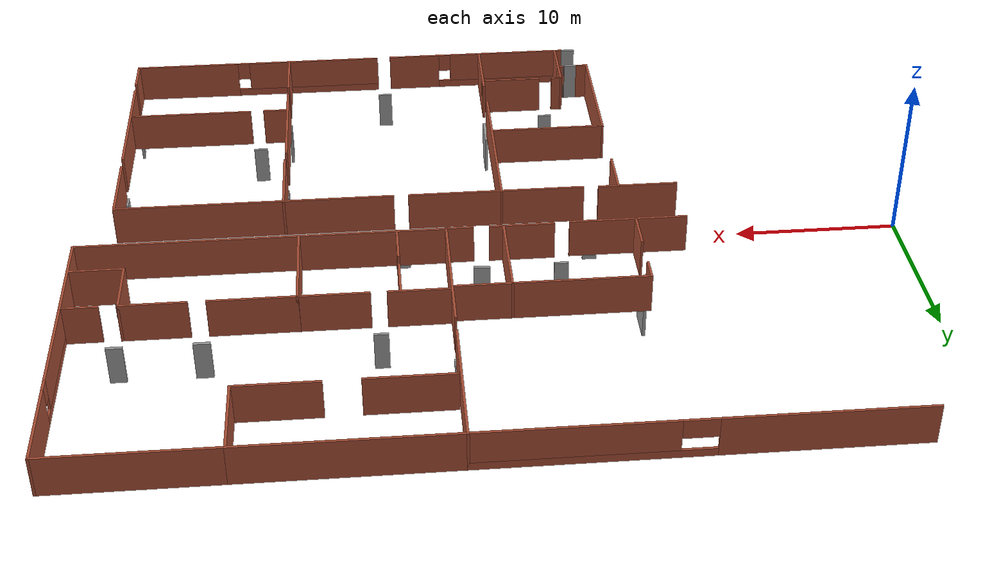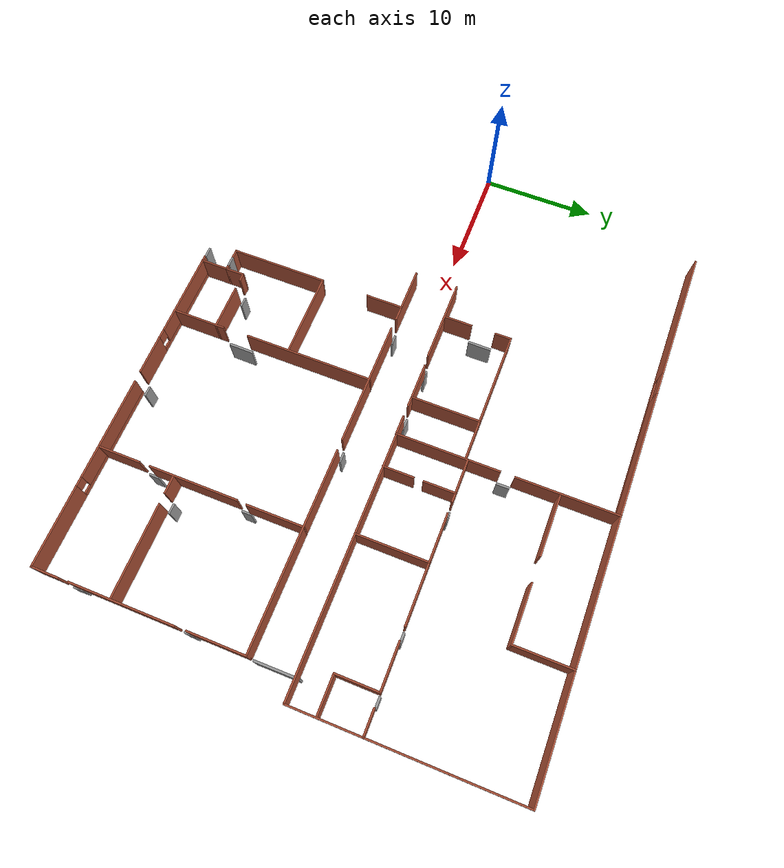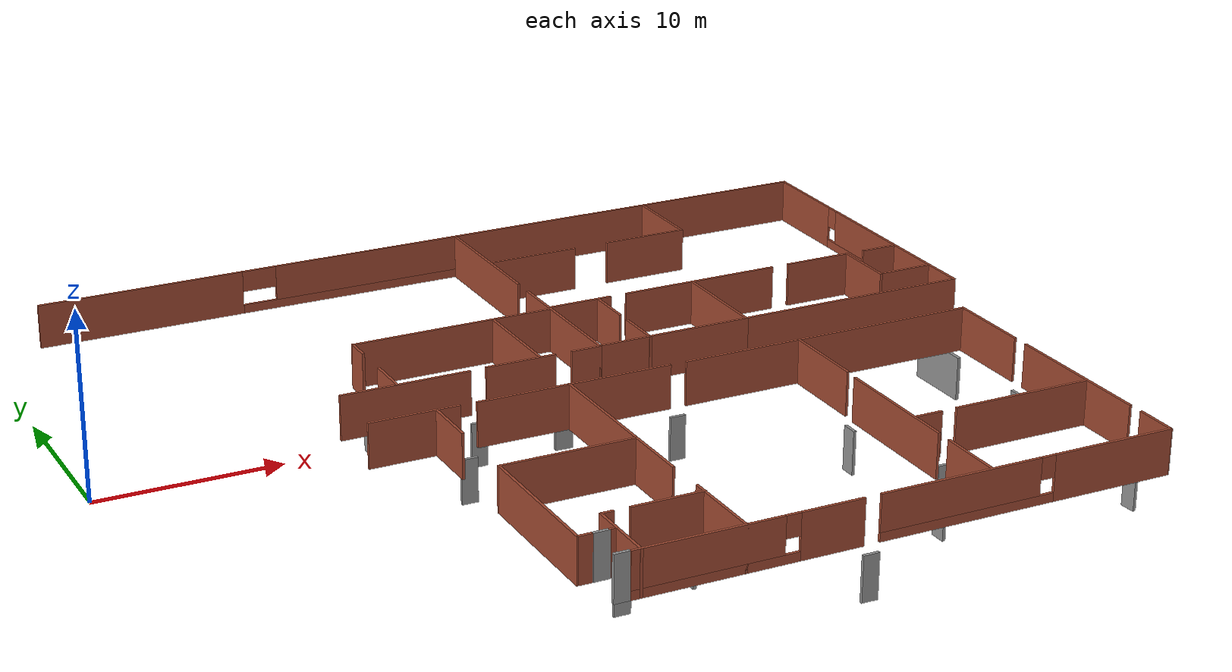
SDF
<sdf version="1.6">
 <model name="Bainer_Hall_FP">
  <pose>1.25513 -0.156837 0 0 -0 0</pose>
  <link name="Door_22">
   <collision name="Door_22_Collision">
    <geometry><box><size>1.17263 0.2 2.5</size></box></geometry>
    <pose>0 0 1.25 0 -0 0</pose>
   </collision>
   <visual name="Door_22_Visual">
    <pose>0 0 1.25 0 -0 0</pose>
    <geometry><box><size>1.17263 0.2 2.5</size></box></geometry>
    <material>
     <script><uri>file://media/materials/scripts/gazebo.material</uri><name>Gazebo/Grey</name></script>
    </material>
   </visual>
   <pose>26.9821 11.0502 -3 0 0 -1.55803</pose>
  </link>
  <link name="Door_23">
   <collision name="Door_23_Collision">
    <geometry><box><size>1.01 0.2 2.5</size></box></geometry>
    <pose>0 0 1.25 0 -0 0</pose>
   </collision>
   <visual name="Door_23_Visual">
    <pose>0 0 1.25 0 -0 0</pose>
    <geometry><box><size>1.01 0.2 2.5</size></box></geometry>
    <material>
     <script><uri>file://media/materials/scripts/gazebo.material</uri><name>Gazebo/Grey</name></script>
    </material>
   </visual>
   <pose>24.8391 1.55098 -3 0 -0 3.10452</pose>
  </link>
  <link name="Door_24">
   <collision name="Door_24_Collision">
    <geometry><box><size>0.9 0.17 2.5</size></box></geometry>
    <pose>0 0 1.25 0 -0 0</pose>
   </collision>
   <visual name="Door_24_Visual">
    <pose>0 0 1.25 0 -0 0</pose>
    <geometry><box><size>0.9 0.17 2.5</size></box></geometry>
    <material>
     <script><uri>file://media/materials/scripts/gazebo.material</uri><name>Gazebo/Grey</name></script>
    </material>
   </visual>
   <pose>19.9109 1.51909 -3 0 -0 0</pose>
  </link>
  <link name="Door_25">
   <collision name="Door_25_Collision">
    <geometry><box><size>2.087 0.2 2.5</size></box></geometry>
    <pose>0 0 1.25 0 -0 0</pose>
   </collision>
   <visual name="Door_25_Visual">
    <pose>0 0 1.25 0 -0 0</pose>
    <geometry><box><size>2.087 0.2 2.5</size></box></geometry>
    <material>
     <script><uri>file://media/materials/scripts/gazebo.material</uri><name>Gazebo/Grey</name></script>
    </material>
   </visual>
   <pose>15.4161 5.0222 -3 0 0 -1.5708</pose>
  </link>
  <link name="Door_26">
   <collision name="Door_26_Collision">
    <geometry><box><size>1.035 0.2 2.5</size></box></geometry>
    <pose>0 0 1.25 0 -0 0</pose>
   </collision>
   <visual name="Door_26_Visual">
    <pose>0 0 1.25 0 -0 0</pose>
    <geometry><box><size>1.035 0.2 2.5</size></box></geometry>
    <material>
     <script><uri>file://media/materials/scripts/gazebo.material</uri><name>Gazebo/Grey</name></script>
    </material>
   </visual>
   <pose>41.537 7.70908 -3 0 -0 0</pose>
  </link>
  <link name="Door_27">
   <collision name="Door_27_Collision">
    <geometry><box><size>0.989792 0.2 2.5</size></box></geometry>
    <pose>0 0 1.25 0 -0 0</pose>
   </collision>
   <visual name="Door_27_Visual">
    <pose>0 0 1.25 0 -0 0</pose>
    <geometry><box><size>0.989792 0.2 2.5</size></box></geometry>
    <material>
     <script><uri>file://media/materials/scripts/gazebo.material</uri><name>Gazebo/Grey</name></script>
    </material>
   </visual>
   <pose>46.5429 7.70908 -3 0 -0 0</pose>
  </link>
  <link name="Door_28">
   <collision name="Door_28_Collision">
    <geometry><box><size>0.9 0.17 2.5</size></box></geometry>
    <pose>0 0 1.25 0 -0 0</pose>
   </collision>
   <visual name="Door_28_Visual">
    <pose>0 0 1.25 0 -0 0</pose>
    <geometry><box><size>0.9 0.17 2.5</size></box></geometry>
    <material>
     <script><uri>file://media/materials/scripts/gazebo.material</uri><name>Gazebo/Grey</name></script>
    </material>
   </visual>
   <pose>31.1816 7.72893 -3 0 -0 0</pose>
  </link>
  <link name="Door_37">
   <collision name="Door_37_Collision">
    <geometry><box><size>0.9 0.17 2.5</size></box></geometry>
    <pose>0 0 1.25 0 -0 0</pose>
   </collision>
   <visual name="Door_37_Visual">
    <pose>0 0 1.25 0 -0 0</pose>
    <geometry><box><size>0.9 0.17 2.5</size></box></geometry>
    <material>
     <script><uri>file://media/materials/scripts/gazebo.material</uri><name>Gazebo/Grey</name></script>
    </material>
   </visual>
   <pose>17.6392 -2.30496 -3 0 -0 0</pose>
  </link>
  <link name="Door_38">
   <collision name="Door_38_Collision">
    <geometry><box><size>0.9 0.17 2.5</size></box></geometry>
    <pose>0 0 1.25 0 -0 0</pose>
   </collision>
   <visual name="Door_38_Visual">
    <pose>0 0 1.25 0 -0 0</pose>
    <geometry><box><size>0.9 0.17 2.5</size></box></geometry>
    <material>
     <script><uri>file://media/materials/scripts/gazebo.material</uri><name>Gazebo/Grey</name></script>
    </material>
   </visual>
   <pose>29.5592 -2.30521 -3 0 0 -3.13072</pose>
  </link>
  <link name="Door_39">
   <collision name="Door_39_Collision">
    <geometry><box><size>0.9 0.17 2.5</size></box></geometry>
    <pose>0 0 1.25 0 -0 0</pose>
   </collision>
   <visual name="Door_39_Visual">
    <pose>0 0 1.25 0 -0 0</pose>
    <geometry><box><size>0.9 0.17 2.5</size></box></geometry>
    <material>
     <script><uri>file://media/materials/scripts/gazebo.material</uri><name>Gazebo/Grey</name></script>
    </material>
   </visual>
   <pose>47.1899 -7.6622 -3 0 -0 1.55378</pose>
  </link>
  <link name="Door_40">
   <collision name="Door_40_Collision">
    <geometry><box><size>0.9 0.17 2</size></box></geometry>
    <pose>0 0 1 0 -0 0</pose>
   </collision>
   <visual name="Door_40_Visual">
    <pose>0 0 1 0 -0 0</pose>
    <geometry><box><size>0.9 0.17 2</size></box></geometry>
    <material>
     <script><uri>file://media/materials/scripts/gazebo.material</uri><name>Gazebo/Grey</name></script>
    </material>
   </visual>
   <pose>47.2284 -17.5715 -3 0 -0 1.63085</pose>
  </link>
  <link name="Door_42">
   <collision name="Door_42_Collision">
    <geometry><box><size>0.9 0.17 2.5</size></box></geometry>
    <pose>0 0 1.25 0 -0 0</pose>
   </collision>
   <visual name="Door_42_Visual">
    <pose>0 0 1.25 0 -0 0</pose>
    <geometry><box><size>0.9 0.17 2.5</size></box></geometry>
    <material>
     <script><uri>file://media/materials/scripts/gazebo.material</uri><name>Gazebo/Grey</name></script>
    </material>
   </visual>
   <pose>30.1038 -20.3171 -3 0 -0 0</pose>
  </link>
  <link name="Door_43">
   <collision name="Door_43_Collision">
    <geometry><box><size>0.9 0.17 2.5</size></box></geometry>
    <pose>0 0 1.25 0 -0 0</pose>
   </collision>
   <visual name="Door_43_Visual">
    <pose>0 0 1.25 0 -0 0</pose>
    <geometry><box><size>0.9 0.17 2.5</size></box></geometry>
    <material>
     <script><uri>file://media/materials/scripts/gazebo.material</uri><name>Gazebo/Grey</name></script>
    </material>
   </visual>
   <pose>17.011 -20.2734 0 0 -0 0</pose>
  </link>
  <link name="Door_44">
   <collision name="Door_44_Collision">
    <geometry><box><size>2.20957 0.2 2.5</size></box></geometry>
    <pose>0 0 1.25 0 -0 0</pose>
   </collision>
   <visual name="Door_44_Visual">
    <pose>0 0 1.25 0 -0 0</pose>
    <geometry><box><size>2.20957 0.2 2.5</size></box></geometry>
    <material>
     <script><uri>file://media/materials/scripts/gazebo.material</uri><name>Gazebo/Grey</name></script>
    </material>
   </visual>
   <pose>23.3396 -14.5504 -3 0 0 -1.58102</pose>
  </link>
  <link name="Door_45">
   <collision name="Door_45_Collision">
    <geometry><box><size>0.9 0.17 2.5</size></box></geometry>
    <pose>0 0 1.25 0 -0 0</pose>
   </collision>
   <visual name="Door_45_Visual">
    <pose>0 0 1.25 0 -0 0</pose>
    <geometry><box><size>0.9 0.17 2.5</size></box></geometry>
    <material>
     <script><uri>file://media/materials/scripts/gazebo.material</uri><name>Gazebo/Grey</name></script>
    </material>
   </visual>
   <pose>17.1411 -17.9894 0 0 0 -3.1354</pose>
  </link>
  <link name="Door_46">
   <collision name="Door_46_Collision">
    <geometry><box><size>0.9 0.17 2.5</size></box></geometry>
    <pose>0 0 1.25 0 -0 0</pose>
   </collision>
   <visual name="Door_46_Visual">
    <pose>0 0 1.25 0 -0 0</pose>
    <geometry><box><size>0.9 0.17 2.5</size></box></geometry>
    <material>
     <script><uri>file://media/materials/scripts/gazebo.material</uri><name>Gazebo/Grey</name></script>
    </material>
   </visual>
   <pose>19.031 -16.3929 -3 0 -0 0</pose>
  </link>
  <link name="Door_74">
   <collision name="Door_74_Collision">
    <geometry><box><size>0.9 0.17 2.5</size></box></geometry>
    <pose>0 0 1.25 0 -0 0</pose>
   </collision>
   <visual name="Door_74_Visual">
    <pose>0 0 1.25 0 -0 0</pose>
    <geometry><box><size>0.9 0.17 2.5</size></box></geometry>
    <material>
     <script><uri>file://media/materials/scripts/gazebo.material</uri><name>Gazebo/Grey</name></script>
    </material>
   </visual>
   <pose>36.8135 -7.65435 -3 0 -0 1.56912</pose>
  </link>
  <link name="Door_75">
   <collision name="Door_75_Collision">
    <geometry><box><size>0.9 0.17 2.5</size></box></geometry>
    <pose>0 0 1.25 0 -0 0</pose>
   </collision>
   <visual name="Door_75_Visual">
    <pose>0 0 1.25 0 -0 0</pose>
    <geometry><box><size>0.9 0.17 2.5</size></box></geometry>
    <material>
     <script><uri>file://media/materials/scripts/gazebo.material</uri><name>Gazebo/Grey</name></script>
    </material>
   </visual>
   <pose>36.7536 -16.1655 -3 0 -0 1.57023</pose>
  </link>
  <link name="Door_77">
   <collision name="Door_77_Collision">
    <geometry><box><size>0.9 0.17 2.5</size></box></geometry>
    <pose>0 0 1.25 0 -0 0</pose>
   </collision>
   <visual name="Door_77_Visual">
    <pose>0 0 1.25 0 -0 0</pose>
    <geometry><box><size>0.9 0.17 2.5</size></box></geometry>
    <material>
     <script><uri>file://media/materials/scripts/gazebo.material</uri><name>Gazebo/Grey</name></script>
    </material>
   </visual>
   <pose>38.7507 -13.5455 -3 0 -0 0</pose>
  </link>
  <link name="Door_79">
   <collision name="Door_79_Collision">
    <geometry><box><size>3.838 0.2 2.5</size></box></geometry>
    <pose>0 0 1.25 0 -0 0</pose>
   </collision>
   <visual name="Door_79_Visual">
    <pose>0 0 1.25 0 -0 0</pose>
    <geometry><box><size>3.838 0.2 2.5</size></box></geometry>
    <material>
     <script><uri>file://media/materials/scripts/gazebo.material</uri><name>Gazebo/Grey</name></script>
    </material>
   </visual>
   <pose>47.1524 -0.340719 -3 0 -0 1.57754</pose>
  </link>
  <link name="Wall_175">
   <collision name="Wall_175_Collision">
    <geometry><box><size>7.25 0.15 2.5</size></box></geometry>
    <pose>0 0 1.25 0 -0 0</pose>
   </collision>
   <visual name="Wall_175_Visual">
    <pose>0 0 1.25 0 -0 0</pose>
    <geometry><box><size>7.25 0.15 2.5</size></box></geometry>
    <material>
     <script><uri>file://media/materials/scripts/gazebo.material</uri><name>Gazebo/Bricks</name></script>
     <ambient>1 1 1 1</ambient>
    </material>
   </visual>
   <pose>15.8659 1.50344 0 0 -0 0</pose>
  </link>
  <link name="Wall_203">
   <pose>14.5667 20.3043 0 0 -0 0</pose>
   <visual name="Wall_203_Visual_0">
    <pose>-6.60996 0 1.25 0 -0 0</pose>
    <geometry><box><size>11.7801 0.15 2.5</size></box></geometry>
    <material>
     <script><uri>file://media/materials/scripts/gazebo.material</uri><name>Gazebo/Bricks</name></script>
     <ambient>1 1 1 1</ambient>
    </material>
   </visual>
   <collision name="Wall_203_Collision_0">
    <geometry><box><size>11.7801 0.15 2.5</size></box></geometry>
    <pose>-6.60996 0 1.25 0 -0 0</pose>
   </collision>
   <visual name="Wall_203_Visual_1">
    <pose>5.89004 0 0.25 0 -0 0</pose>
    <geometry><box><size>13.2199 0.15 0.5</size></box></geometry>
    <material>
     <script><uri>file://media/materials/scripts/gazebo.material</uri><name>Gazebo/Bricks</name></script>
     <ambient>1 1 1 1</ambient>
    </material>
   </visual>
   <collision name="Wall_203_Collision_1">
    <geometry><box><size>13.2199 0.15 0.5</size></box></geometry>
    <pose>5.89004 0 0.25 0 -0 0</pose>
   </collision>
   <visual name="Wall_203_Visual_2">
    <pose>6.87912 0 1.5 0 -0 0</pose>
    <geometry><box><size>11.2418 0.15 2</size></box></geometry>
    <material>
     <script><uri>file://media/materials/scripts/gazebo.material</uri><name>Gazebo/Bricks</name></script>
     <ambient>1 1 1 1</ambient>
    </material>
   </visual>
   <collision name="Wall_203_Collision_2">
    <geometry><box><size>11.2418 0.15 2</size></box></geometry>
    <pose>6.87912 0 1.5 0 -0 0</pose>
   </collision>
   <visual name="Wall_203_Visual_3">
    <pose>0.26916 0 1.9 0 -0 0</pose>
    <geometry><box><size>1.97814 0.15 1.2</size></box></geometry>
    <material>
     <script><uri>file://media/materials/scripts/gazebo.material</uri><name>Gazebo/Bricks</name></script>
     <ambient>1 1 1 1</ambient>
    </material>
   </visual>
   <collision name="Wall_203_Collision_3">
    <geometry><box><size>1.97814 0.15 1.2</size></box></geometry>
    <pose>0.26916 0 1.9 0 -0 0</pose>
   </collision>
  </link>
  <link name="Wall_204">
   <collision name="Wall_204_Collision">
    <geometry><box><size>8.75 0.15 2.5</size></box></geometry>
    <pose>0 0 1.25 0 -0 0</pose>
   </collision>
   <visual name="Wall_204_Visual">
    <pose>0 0 1.25 0 -0 0</pose>
    <geometry><box><size>8.75 0.15 2.5</size></box></geometry>
    <material>
     <script><uri>file://media/materials/scripts/gazebo.material</uri><name>Gazebo/Bricks</name></script>
     <ambient>1 1 1 1</ambient>
    </material>
   </visual>
   <pose>26.9917 16.0043 0 0 0 -1.5708</pose>
  </link>
  <link name="Wall_206">
   <collision name="Wall_206_Collision">
    <geometry><box><size>9 0.15 2.5</size></box></geometry>
    <pose>0 0 1.25 0 -0 0</pose>
   </collision>
   <visual name="Wall_206_Visual">
    <pose>0 0 1.25 0 -0 0</pose>
    <geometry><box><size>9 0.15 2.5</size></box></geometry>
    <material>
     <script><uri>file://media/materials/scripts/gazebo.material</uri><name>Gazebo/Bricks</name></script>
     <ambient>1 1 1 1</ambient>
    </material>
   </visual>
   <pose>26.9829 5.98264 0 0 0 -1.5708</pose>
  </link>
  <link name="Wall_208">
   <collision name="Wall_208_Collision">
    <geometry><box><size>1.75 0.15 2.5</size></box></geometry>
    <pose>0 0 1.25 0 -0 0</pose>
   </collision>
   <visual name="Wall_208_Visual">
    <pose>0 0 1.25 0 -0 0</pose>
    <geometry><box><size>1.75 0.15 2.5</size></box></geometry>
    <material>
     <script><uri>file://media/materials/scripts/gazebo.material</uri><name>Gazebo/Bricks</name></script>
     <ambient>1 1 1 1</ambient>
    </material>
   </visual>
   <pose>26.1829 1.55764 0 0 -0 3.14159</pose>
  </link>
  <link name="Wall_210">
   <collision name="Wall_210_Collision">
    <geometry><box><size>4 0.15 2.5</size></box></geometry>
    <pose>0 0 1.25 0 -0 0</pose>
   </collision>
   <visual name="Wall_210_Visual">
    <pose>0 0 1.25 0 -0 0</pose>
    <geometry><box><size>4 0.15 2.5</size></box></geometry>
    <material>
     <script><uri>file://media/materials/scripts/gazebo.material</uri><name>Gazebo/Bricks</name></script>
     <ambient>1 1 1 1</ambient>
    </material>
   </visual>
   <pose>22.3796 1.57847 0 0 -0 3.14159</pose>
  </link>
  <link name="Wall_212">
   <collision name="Wall_212_Collision">
    <geometry><box><size>6 0.15 2.5</size></box></geometry>
    <pose>0 0 1.25 0 -0 0</pose>
   </collision>
   <visual name="Wall_212_Visual">
    <pose>0 0 1.25 0 -0 0</pose>
    <geometry><box><size>6 0.15 2.5</size></box></geometry>
    <material>
     <script><uri>file://media/materials/scripts/gazebo.material</uri><name>Gazebo/Bricks</name></script>
     <ambient>1 1 1 1</ambient>
    </material>
   </visual>
   <pose>23.5031 4.56284 0 0 -0 1.5708</pose>
  </link>
  <link name="Wall_213">
   <collision name="Wall_213_Collision">
    <geometry><box><size>3.5 0.15 2.5</size></box></geometry>
    <pose>0 0 1.25 0 -0 0</pose>
   </collision>
   <visual name="Wall_213_Visual">
    <pose>0 0 1.25 0 -0 0</pose>
    <geometry><box><size>3.5 0.15 2.5</size></box></geometry>
    <material>
     <script><uri>file://media/materials/scripts/gazebo.material</uri><name>Gazebo/Bricks</name></script>
     <ambient>1 1 1 1</ambient>
    </material>
   </visual>
   <pose>25.1781 7.48784 0 0 -0 0</pose>
  </link>
  <link name="Wall_216">
   <collision name="Wall_216_Collision">
    <geometry><box><size>8.25 0.15 2.5</size></box></geometry>
    <pose>0 0 1.25 0 -0 0</pose>
   </collision>
   <visual name="Wall_216_Visual">
    <pose>0 0 1.25 0 -0 0</pose>
    <geometry><box><size>8.25 0.15 2.5</size></box></geometry>
    <material>
     <script><uri>file://media/materials/scripts/gazebo.material</uri><name>Gazebo/Bricks</name></script>
     <ambient>1 1 1 1</ambient>
    </material>
   </visual>
   <pose>19.4531 7.48784 0 0 -0 3.14159</pose>
  </link>
  <link name="Wall_217">
   <collision name="Wall_217_Collision">
    <geometry><box><size>1.5 0.15 2.5</size></box></geometry>
    <pose>0 0 1.25 0 -0 0</pose>
   </collision>
   <visual name="Wall_217_Visual">
    <pose>0 0 1.25 0 -0 0</pose>
    <geometry><box><size>1.5 0.15 2.5</size></box></geometry>
    <material>
     <script><uri>file://media/materials/scripts/gazebo.material</uri><name>Gazebo/Bricks</name></script>
     <ambient>1 1 1 1</ambient>
    </material>
   </visual>
   <pose>15.4031 6.81284 0 0 0 -1.5708</pose>
  </link>
  <link name="Wall_219">
   <collision name="Wall_219_Collision">
    <geometry><box><size>2.5 0.15 2.5</size></box></geometry>
    <pose>0 0 1.25 0 -0 0</pose>
   </collision>
   <visual name="Wall_219_Visual">
    <pose>0 0 1.25 0 -0 0</pose>
    <geometry><box><size>2.5 0.15 2.5</size></box></geometry>
    <material>
     <script><uri>file://media/materials/scripts/gazebo.material</uri><name>Gazebo/Bricks</name></script>
     <ambient>1 1 1 1</ambient>
    </material>
   </visual>
   <pose>15.4161 2.77846 0 0 0 -1.5708</pose>
  </link>
  <link name="Wall_221">
   <collision name="Wall_221_Collision">
    <geometry><box><size>12.5 0.15 2.5</size></box></geometry>
    <pose>0 0 1.25 0 -0 0</pose>
   </collision>
   <visual name="Wall_221_Visual">
    <pose>0 0 1.25 0 -0 0</pose>
    <geometry><box><size>12.5 0.15 2.5</size></box></geometry>
    <material>
     <script><uri>file://media/materials/scripts/gazebo.material</uri><name>Gazebo/Bricks</name></script>
     <ambient>1 1 1 1</ambient>
    </material>
   </visual>
   <pose>33.1667 20.3043 0 0 -0 0</pose>
  </link>
  <link name="Wall_222">
   <collision name="Wall_222_Collision">
    <geometry><box><size>5 0.15 2.5</size></box></geometry>
    <pose>0 0 1.25 0 -0 0</pose>
   </collision>
   <visual name="Wall_222_Visual">
    <pose>0 0 1.25 0 -0 0</pose>
    <geometry><box><size>5 0.15 2.5</size></box></geometry>
    <material>
     <script><uri>file://media/materials/scripts/gazebo.material</uri><name>Gazebo/Bricks</name></script>
     <ambient>1 1 1 1</ambient>
    </material>
   </visual>
   <pose>39.3417 17.8793 0 0 0 -1.5708</pose>
  </link>
  <link name="Wall_223">
   <collision name="Wall_223_Collision">
    <geometry><box><size>5 0.15 2.5</size></box></geometry>
    <pose>0 0 1.25 0 -0 0</pose>
   </collision>
   <visual name="Wall_223_Visual">
    <pose>0 0 1.25 0 -0 0</pose>
    <geometry><box><size>5 0.15 2.5</size></box></geometry>
    <material>
     <script><uri>file://media/materials/scripts/gazebo.material</uri><name>Gazebo/Bricks</name></script>
     <ambient>1 1 1 1</ambient>
    </material>
   </visual>
   <pose>36.9167 15.4543 0 0 -0 3.14159</pose>
  </link>
  <link name="Wall_225">
   <collision name="Wall_225_Collision">
    <geometry><box><size>5.25 0.15 2.5</size></box></geometry>
    <pose>0 0 1.25 0 -0 0</pose>
   </collision>
   <visual name="Wall_225_Visual">
    <pose>0 0 1.25 0 -0 0</pose>
    <geometry><box><size>5.25 0.15 2.5</size></box></geometry>
    <material>
     <script><uri>file://media/materials/scripts/gazebo.material</uri><name>Gazebo/Bricks</name></script>
     <ambient>1 1 1 1</ambient>
    </material>
   </visual>
   <pose>29.716 15.4312 0 0 -0 3.14159</pose>
  </link>
  <link name="Wall_227">
   <collision name="Wall_227_Collision">
    <geometry><box><size>10 0.15 2.5</size></box></geometry>
    <pose>0 0 1.25 0 -0 0</pose>
   </collision>
   <visual name="Wall_227_Visual">
    <pose>0 0 1.25 0 -0 0</pose>
    <geometry><box><size>10 0.15 2.5</size></box></geometry>
    <material>
     <script><uri>file://media/materials/scripts/gazebo.material</uri><name>Gazebo/Bricks</name></script>
     <ambient>1 1 1 1</ambient>
    </material>
   </visual>
   <pose>44.2667 20.3043 0 0 -0 0</pose>
  </link>
  <link name="Wall_228">
   <pose>49.1917 14.0043 0 0 0 -1.5708</pose>
   <visual name="Wall_228_Visual_0">
    <pose>-3.63987 0 1.25 0 -0 0</pose>
    <geometry><box><size>5.47027 0.15 2.5</size></box></geometry>
    <material>
     <script><uri>file://media/materials/scripts/gazebo.material</uri><name>Gazebo/Bricks</name></script>
     <ambient>1 1 1 1</ambient>
    </material>
   </visual>
   <collision name="Wall_228_Collision_0">
    <geometry><box><size>5.47027 0.15 2.5</size></box></geometry>
    <pose>-3.63987 0 1.25 0 -0 0</pose>
   </collision>
   <visual name="Wall_228_Visual_1">
    <pose>2.73513 0 0.25 0 -0 0</pose>
    <geometry><box><size>7.27973 0.15 0.5</size></box></geometry>
    <material>
     <script><uri>file://media/materials/scripts/gazebo.material</uri><name>Gazebo/Bricks</name></script>
     <ambient>1 1 1 1</ambient>
    </material>
   </visual>
   <collision name="Wall_228_Collision_1">
    <geometry><box><size>7.27973 0.15 0.5</size></box></geometry>
    <pose>2.73513 0 0.25 0 -0 0</pose>
   </collision>
   <visual name="Wall_228_Visual_2">
    <pose>3.13513 0 1.5 0 -0 0</pose>
    <geometry><box><size>6.47973 0.15 2</size></box></geometry>
    <material>
     <script><uri>file://media/materials/scripts/gazebo.material</uri><name>Gazebo/Bricks</name></script>
     <ambient>1 1 1 1</ambient>
    </material>
   </visual>
   <collision name="Wall_228_Collision_2">
    <geometry><box><size>6.47973 0.15 2</size></box></geometry>
    <pose>3.13513 0 1.5 0 -0 0</pose>
   </collision>
   <visual name="Wall_228_Visual_3">
    <pose>-0.504733 0 1.9 0 -0 0</pose>
    <geometry><box><size>0.8 0.15 1.2</size></box></geometry>
    <material>
     <script><uri>file://media/materials/scripts/gazebo.material</uri><name>Gazebo/Bricks</name></script>
     <ambient>1 1 1 1</ambient>
    </material>
   </visual>
   <collision name="Wall_228_Collision_3">
    <geometry><box><size>0.8 0.15 1.2</size></box></geometry>
    <pose>-0.504733 0 1.9 0 -0 0</pose>
   </collision>
  </link>
  <link name="Wall_229">
   <collision name="Wall_229_Collision">
    <geometry><box><size>2.25 0.15 2.5</size></box></geometry>
    <pose>0 0 1.25 0 -0 0</pose>
   </collision>
   <visual name="Wall_229_Visual">
    <pose>0 0 1.25 0 -0 0</pose>
    <geometry><box><size>2.25 0.15 2.5</size></box></geometry>
    <material>
     <script><uri>file://media/materials/scripts/gazebo.material</uri><name>Gazebo/Bricks</name></script>
     <ambient>1 1 1 1</ambient>
    </material>
   </visual>
   <pose>48.1417 7.70435 0 0 -0 3.14159</pose>
  </link>
  <link name="Wall_231">
   <collision name="Wall_231_Collision">
    <geometry><box><size>6.25 0.15 2.5</size></box></geometry>
    <pose>0 0 1.25 0 -0 0</pose>
   </collision>
   <visual name="Wall_231_Visual">
    <pose>0 0 1.25 0 -0 0</pose>
    <geometry><box><size>6.25 0.15 2.5</size></box></geometry>
    <material>
     <script><uri>file://media/materials/scripts/gazebo.material</uri><name>Gazebo/Bricks</name></script>
     <ambient>1 1 1 1</ambient>
    </material>
   </visual>
   <pose>49.1917 4.65435 0 0 0 -1.5708</pose>
  </link>
  <link name="Wall_232">
   <collision name="Wall_232_Collision">
    <geometry><box><size>13.5 0.15 2.5</size></box></geometry>
    <pose>0 0 1.25 0 -0 0</pose>
   </collision>
   <visual name="Wall_232_Visual">
    <pose>0 0 1.25 0 -0 0</pose>
    <geometry><box><size>13.5 0.15 2.5</size></box></geometry>
    <material>
     <script><uri>file://media/materials/scripts/gazebo.material</uri><name>Gazebo/Bricks</name></script>
     <ambient>1 1 1 1</ambient>
    </material>
   </visual>
   <pose>42.5167 1.60435 0 0 -0 3.14159</pose>
  </link>
  <link name="Wall_233">
   <collision name="Wall_233_Collision">
    <geometry><box><size>6.25 0.15 2.5</size></box></geometry>
    <pose>0 0 1.25 0 -0 0</pose>
   </collision>
   <visual name="Wall_233_Visual">
    <pose>0 0 1.25 0 -0 0</pose>
    <geometry><box><size>6.25 0.15 2.5</size></box></geometry>
    <material>
     <script><uri>file://media/materials/scripts/gazebo.material</uri><name>Gazebo/Bricks</name></script>
     <ambient>1 1 1 1</ambient>
    </material>
   </visual>
   <pose>35.8417 4.65435 0 0 -0 1.5708</pose>
  </link>
  <link name="Wall_234">
   <collision name="Wall_234_Collision">
    <geometry><box><size>5.25 0.15 2.5</size></box></geometry>
    <pose>0 0 1.25 0 -0 0</pose>
   </collision>
   <visual name="Wall_234_Visual">
    <pose>0 0 1.25 0 -0 0</pose>
    <geometry><box><size>5.25 0.15 2.5</size></box></geometry>
    <material>
     <script><uri>file://media/materials/scripts/gazebo.material</uri><name>Gazebo/Bricks</name></script>
     <ambient>1 1 1 1</ambient>
    </material>
   </visual>
   <pose>38.3917 7.70435 0 0 -0 0</pose>
  </link>
  <link name="Wall_236">
   <collision name="Wall_236_Collision">
    <geometry><box><size>4 0.15 2.5</size></box></geometry>
    <pose>0 0 1.25 0 -0 0</pose>
   </collision>
   <visual name="Wall_236_Visual">
    <pose>0 0 1.25 0 -0 0</pose>
    <geometry><box><size>4 0.15 2.5</size></box></geometry>
    <material>
     <script><uri>file://media/materials/scripts/gazebo.material</uri><name>Gazebo/Bricks</name></script>
     <ambient>1 1 1 1</ambient>
    </material>
   </visual>
   <pose>44.0232 7.70908 0 0 -0 0</pose>
  </link>
  <link name="Wall_237">
   <collision name="Wall_237_Collision">
    <geometry><box><size>3.75 0.15 2.5</size></box></geometry>
    <pose>0 0 1.25 0 -0 0</pose>
   </collision>
   <visual name="Wall_237_Visual">
    <pose>0 0 1.25 0 -0 0</pose>
    <geometry><box><size>3.75 0.15 2.5</size></box></geometry>
    <material>
     <script><uri>file://media/materials/scripts/gazebo.material</uri><name>Gazebo/Bricks</name></script>
     <ambient>1 1 1 1</ambient>
    </material>
   </visual>
   <pose>45.9482 5.90908 0 0 0 -1.5708</pose>
  </link>
  <link name="Wall_238">
   <collision name="Wall_238_Collision">
    <geometry><box><size>3.25 0.15 2.5</size></box></geometry>
    <pose>0 0 1.25 0 -0 0</pose>
   </collision>
   <visual name="Wall_238_Visual">
    <pose>0 0 1.25 0 -0 0</pose>
    <geometry><box><size>3.25 0.15 2.5</size></box></geometry>
    <material>
     <script><uri>file://media/materials/scripts/gazebo.material</uri><name>Gazebo/Bricks</name></script>
     <ambient>1 1 1 1</ambient>
    </material>
   </visual>
   <pose>47.4982 4.10908 0 0 -0 0</pose>
  </link>
  <link name="Wall_240">
   <collision name="Wall_240_Collision">
    <geometry><box><size>9 0.15 2.5</size></box></geometry>
    <pose>0 0 1.25 0 -0 0</pose>
   </collision>
   <visual name="Wall_240_Visual">
    <pose>0 0 1.25 0 -0 0</pose>
    <geometry><box><size>9 0.15 2.5</size></box></geometry>
    <material>
     <script><uri>file://media/materials/scripts/gazebo.material</uri><name>Gazebo/Bricks</name></script>
     <ambient>1 1 1 1</ambient>
    </material>
   </visual>
   <pose>31.4167 1.60435 0 0 -0 3.14159</pose>
  </link>
  <link name="Wall_242">
   <collision name="Wall_242_Collision">
    <geometry><box><size>4.25 0.15 2.5</size></box></geometry>
    <pose>0 0 1.25 0 -0 0</pose>
   </collision>
   <visual name="Wall_242_Visual">
    <pose>0 0 1.25 0 -0 0</pose>
    <geometry><box><size>4.25 0.15 2.5</size></box></geometry>
    <material>
     <script><uri>file://media/materials/scripts/gazebo.material</uri><name>Gazebo/Bricks</name></script>
     <ambient>1 1 1 1</ambient>
    </material>
   </visual>
   <pose>33.7917 7.70435 0 0 -0 3.14159</pose>
  </link>
  <link name="Wall_244">
   <collision name="Wall_244_Collision">
    <geometry><box><size>3.75 0.15 2.5</size></box></geometry>
    <pose>0 0 1.25 0 -0 0</pose>
   </collision>
   <visual name="Wall_244_Visual">
    <pose>0 0 1.25 0 -0 0</pose>
    <geometry><box><size>3.75 0.15 2.5</size></box></geometry>
    <material>
     <script><uri>file://media/materials/scripts/gazebo.material</uri><name>Gazebo/Bricks</name></script>
     <ambient>1 1 1 1</ambient>
    </material>
   </visual>
   <pose>28.8722 7.7034 0 0 -0 0</pose>
  </link>
  <link name="Wall_246">
   <collision name="Wall_246_Collision">
    <geometry><box><size>2.75 0.15 2.5</size></box></geometry>
    <pose>0 0 1.25 0 -0 0</pose>
   </collision>
   <visual name="Wall_246_Visual">
    <pose>0 0 1.25 0 -0 0</pose>
    <geometry><box><size>2.75 0.15 2.5</size></box></geometry>
    <material>
     <script><uri>file://media/materials/scripts/gazebo.material</uri><name>Gazebo/Bricks</name></script>
     <ambient>1 1 1 1</ambient>
    </material>
   </visual>
   <pose>29.9547 6.36704 0 0 0 -1.5708</pose>
  </link>
  <link name="Wall_248">
   <collision name="Wall_248_Collision">
    <geometry><box><size>2.75 0.15 2.5</size></box></geometry>
    <pose>0 0 1.25 0 -0 0</pose>
   </collision>
   <visual name="Wall_248_Visual">
    <pose>0 0 1.25 0 -0 0</pose>
    <geometry><box><size>2.75 0.15 2.5</size></box></geometry>
    <material>
     <script><uri>file://media/materials/scripts/gazebo.material</uri><name>Gazebo/Bricks</name></script>
     <ambient>1 1 1 1</ambient>
    </material>
   </visual>
   <pose>29.9547 2.87948 0 0 0 -1.5708</pose>
  </link>
  <link name="Wall_276">
   <collision name="Wall_276_Collision">
    <geometry><box><size>5 0.15 2.5</size></box></geometry>
    <pose>0 0 1.25 0 -0 0</pose>
   </collision>
   <visual name="Wall_276_Visual">
    <pose>0 0 1.25 0 -0 0</pose>
    <geometry><box><size>5 0.15 2.5</size></box></geometry>
    <material>
     <script><uri>file://media/materials/scripts/gazebo.material</uri><name>Gazebo/Bricks</name></script>
     <ambient>1 1 1 1</ambient>
    </material>
   </visual>
   <pose>14.7216 -2.26006 0 0 -0 0</pose>
  </link>
  <link name="Wall_278">
   <collision name="Wall_278_Collision">
    <geometry><box><size>11 0.15 2.5</size></box></geometry>
    <pose>0 0 1.25 0 -0 0</pose>
   </collision>
   <visual name="Wall_278_Visual">
    <pose>0 0 1.25 0 -0 0</pose>
    <geometry><box><size>11 0.15 2.5</size></box></geometry>
    <material>
     <script><uri>file://media/materials/scripts/gazebo.material</uri><name>Gazebo/Bricks</name></script>
     <ambient>1 1 1 1</ambient>
    </material>
   </visual>
   <pose>23.603 -2.30496 0 0 -0 0</pose>
  </link>
  <link name="Wall_281">
   <collision name="Wall_281_Collision">
    <geometry><box><size>17.25 0.15 2.5</size></box></geometry>
    <pose>0 0 1.25 0 -0 0</pose>
   </collision>
   <visual name="Wall_281_Visual">
    <pose>0 0 1.25 0 -0 0</pose>
    <geometry><box><size>17.25 0.15 2.5</size></box></geometry>
    <material>
     <script><uri>file://media/materials/scripts/gazebo.material</uri><name>Gazebo/Bricks</name></script>
     <ambient>1 1 1 1</ambient>
    </material>
   </visual>
   <pose>38.6195 -2.31129 0 0 -0 0</pose>
  </link>
  <link name="Wall_283">
   <collision name="Wall_283_Collision">
    <geometry><box><size>5 0.15 2.5</size></box></geometry>
    <pose>0 0 1.25 0 -0 0</pose>
   </collision>
   <visual name="Wall_283_Visual">
    <pose>0 0 1.25 0 -0 0</pose>
    <geometry><box><size>5 0.15 2.5</size></box></geometry>
    <material>
     <script><uri>file://media/materials/scripts/gazebo.material</uri><name>Gazebo/Bricks</name></script>
     <ambient>1 1 1 1</ambient>
    </material>
   </visual>
   <pose>47.1695 -4.73629 0 0 0 -1.5708</pose>
  </link>
  <link name="Wall_286">
   <pose>38.8969 -20.289 0 0 -0 3.14159</pose>
   <visual name="Wall_286_Visual_0">
    <pose>-4.91035 0 1.25 0 -0 0</pose>
    <geometry><box><size>6.92931 0.15 2.5</size></box></geometry>
    <material>
     <script><uri>file://media/materials/scripts/gazebo.material</uri><name>Gazebo/Bricks</name></script>
     <ambient>0.760784 0.662745 0.627451 1</ambient>
    </material>
   </visual>
   <collision name="Wall_286_Collision_0">
    <geometry><box><size>6.92931 0.15 2.5</size></box></geometry>
    <pose>-4.91035 0 1.25 0 -0 0</pose>
   </collision>
   <visual name="Wall_286_Visual_1">
    <pose>3.46465 0 0.25 0 -0 0</pose>
    <geometry><box><size>9.82069 0.15 0.5</size></box></geometry>
    <material>
     <script><uri>file://media/materials/scripts/gazebo.material</uri><name>Gazebo/Bricks</name></script>
     <ambient>0.760784 0.662745 0.627451 1</ambient>
    </material>
   </visual>
   <collision name="Wall_286_Collision_1">
    <geometry><box><size>9.82069 0.15 0.5</size></box></geometry>
    <pose>3.46465 0 0.25 0 -0 0</pose>
   </collision>
   <visual name="Wall_286_Visual_2">
    <pose>3.86465 0 1.5 0 -0 0</pose>
    <geometry><box><size>9.02069 0.15 2</size></box></geometry>
    <material>
     <script><uri>file://media/materials/scripts/gazebo.material</uri><name>Gazebo/Bricks</name></script>
     <ambient>0.760784 0.662745 0.627451 1</ambient>
    </material>
   </visual>
   <collision name="Wall_286_Collision_2">
    <geometry><box><size>9.02069 0.15 2</size></box></geometry>
    <pose>3.86465 0 1.5 0 -0 0</pose>
   </collision>
   <visual name="Wall_286_Visual_3">
    <pose>-1.04569 0 1.9 0 -0 0</pose>
    <geometry><box><size>0.8 0.15 1.2</size></box></geometry>
    <material>
     <script><uri>file://media/materials/scripts/gazebo.material</uri><name>Gazebo/Bricks</name></script>
     <ambient>0.760784 0.662745 0.627451 1</ambient>
    </material>
   </visual>
   <collision name="Wall_286_Collision_3">
    <geometry><box><size>0.8 0.15 1.2</size></box></geometry>
    <pose>-1.04569 0 1.9 0 -0 0</pose>
   </collision>
  </link>
  <link name="Wall_288">
   <collision name="Wall_288_Collision">
    <geometry><box><size>9 0.15 2.5</size></box></geometry>
    <pose>0 0 1.25 0 -0 0</pose>
   </collision>
   <visual name="Wall_288_Visual">
    <pose>0 0 1.25 0 -0 0</pose>
    <geometry><box><size>9 0.15 2.5</size></box></geometry>
    <material>
     <script><uri>file://media/materials/scripts/gazebo.material</uri><name>Gazebo/Bricks</name></script>
     <ambient>1 1 1 1</ambient>
    </material>
   </visual>
   <pose>47.1863 -12.6273 0 0 0 -1.5708</pose>
  </link>
  <link name="Wall_290">
   <collision name="Wall_290_Collision">
    <geometry><box><size>2.42631 0.15 2.5</size></box></geometry>
    <pose>0 0 1.25 0 -0 0</pose>
   </collision>
   <visual name="Wall_290_Visual">
    <pose>0 0 1.25 0 -0 0</pose>
    <geometry><box><size>2.42631 0.15 2.5</size></box></geometry>
    <material>
     <script><uri>file://media/materials/scripts/gazebo.material</uri><name>Gazebo/Bricks</name></script>
     <ambient>0.760784 0.662745 0.627451 1</ambient>
    </material>
   </visual>
   <pose>47.2022 -19.1508 0 0 0 -1.5755</pose>
  </link>
  <link name="Wall_292">
   <pose>23.5301 -20.3171 0 0 -0 3.14159</pose>
   <visual name="Wall_292_Visual_0">
    <pose>-4.39392 0 1.25 0 -0 0</pose>
    <geometry><box><size>3.46217 0.15 2.5</size></box></geometry>
    <material>
     <script><uri>file://media/materials/scripts/gazebo.material</uri><name>Gazebo/Bricks</name></script>
     <ambient>0.760784 0.662745 0.627451 1</ambient>
    </material>
   </visual>
   <collision name="Wall_292_Collision_0">
    <geometry><box><size>3.46217 0.15 2.5</size></box></geometry>
    <pose>-4.39392 0 1.25 0 -0 0</pose>
   </collision>
   <visual name="Wall_292_Visual_1">
    <pose>1.73108 0 0.25 0 -0 0</pose>
    <geometry><box><size>8.78783 0.15 0.5</size></box></geometry>
    <material>
     <script><uri>file://media/materials/scripts/gazebo.material</uri><name>Gazebo/Bricks</name></script>
     <ambient>0.760784 0.662745 0.627451 1</ambient>
    </material>
   </visual>
   <collision name="Wall_292_Collision_1">
    <geometry><box><size>8.78783 0.15 0.5</size></box></geometry>
    <pose>1.73108 0 0.25 0 -0 0</pose>
   </collision>
   <visual name="Wall_292_Visual_2">
    <pose>2.13108 0 1.5 0 -0 0</pose>
    <geometry><box><size>7.98783 0.15 2</size></box></geometry>
    <material>
     <script><uri>file://media/materials/scripts/gazebo.material</uri><name>Gazebo/Bricks</name></script>
     <ambient>0.760784 0.662745 0.627451 1</ambient>
    </material>
   </visual>
   <collision name="Wall_292_Collision_2">
    <geometry><box><size>7.98783 0.15 2</size></box></geometry>
    <pose>2.13108 0 1.5 0 -0 0</pose>
   </collision>
   <visual name="Wall_292_Visual_3">
    <pose>-2.26283 0 1.9 0 -0 0</pose>
    <geometry><box><size>0.8 0.15 1.2</size></box></geometry>
    <material>
     <script><uri>file://media/materials/scripts/gazebo.material</uri><name>Gazebo/Bricks</name></script>
     <ambient>0.760784 0.662745 0.627451 1</ambient>
    </material>
   </visual>
   <collision name="Wall_292_Collision_3">
    <geometry><box><size>0.8 0.15 1.2</size></box></geometry>
    <pose>-2.26283 0 1.9 0 -0 0</pose>
   </collision>
  </link>
  <link name="Wall_294">
   <collision name="Wall_294_Collision">
    <geometry><box><size>4.75 0.15 2.5</size></box></geometry>
    <pose>0 0 1.25 0 -0 0</pose>
   </collision>
   <visual name="Wall_294_Visual">
    <pose>0 0 1.25 0 -0 0</pose>
    <geometry><box><size>4.75 0.15 2.5</size></box></geometry>
    <material>
     <script><uri>file://media/materials/scripts/gazebo.material</uri><name>Gazebo/Bricks</name></script>
     <ambient>1 1 1 1</ambient>
    </material>
   </visual>
   <pose>23.3392 -18.0171 0 0 -0 1.5708</pose>
  </link>
  <link name="Wall_296">
   <collision name="Wall_296_Collision">
    <geometry><box><size>11.25 0.15 2.5</size></box></geometry>
    <pose>0 0 1.25 0 -0 0</pose>
   </collision>
   <visual name="Wall_296_Visual">
    <pose>0 0 1.25 0 -0 0</pose>
    <geometry><box><size>11.25 0.15 2.5</size></box></geometry>
    <material>
     <script><uri>file://media/materials/scripts/gazebo.material</uri><name>Gazebo/Bricks</name></script>
     <ambient>1 1 1 1</ambient>
    </material>
   </visual>
   <pose>23.2881 -7.82935 0 0 -0 1.5708</pose>
  </link>
  <link name="Wall_298">
   <collision name="Wall_298_Collision">
    <geometry><box><size>7.5 0.15 2.5</size></box></geometry>
    <pose>0 0 1.25 0 -0 0</pose>
   </collision>
   <visual name="Wall_298_Visual">
    <pose>0 0 1.25 0 -0 0</pose>
    <geometry><box><size>7.5 0.15 2.5</size></box></geometry>
    <material>
     <script><uri>file://media/materials/scripts/gazebo.material</uri><name>Gazebo/Bricks</name></script>
     <ambient>1 1 1 1</ambient>
    </material>
   </visual>
   <pose>19.6131 -9.63913 0 0 -0 3.14159</pose>
  </link>
  <link name="Wall_300">
   <collision name="Wall_300_Collision">
    <geometry><box><size>0.75 0.15 2.5</size></box></geometry>
    <pose>0 0 1.25 0 -0 0</pose>
   </collision>
   <visual name="Wall_300_Visual">
    <pose>0 0 1.25 0 -0 0</pose>
    <geometry><box><size>0.75 0.15 2.5</size></box></geometry>
    <material>
     <script><uri>file://media/materials/scripts/gazebo.material</uri><name>Gazebo/Bricks</name></script>
     <ambient>1 1 1 1</ambient>
    </material>
   </visual>
   <pose>16.3144 -17.9912 0 0 -0 0</pose>
  </link>
  <link name="Wall_302">
   <collision name="Wall_302_Collision">
    <geometry><box><size>8.5 0.15 2.5</size></box></geometry>
    <pose>0 0 1.25 0 -0 0</pose>
   </collision>
   <visual name="Wall_302_Visual">
    <pose>0 0 1.25 0 -0 0</pose>
    <geometry><box><size>8.5 0.15 2.5</size></box></geometry>
    <material>
     <script><uri>file://media/materials/scripts/gazebo.material</uri><name>Gazebo/Bricks</name></script>
     <ambient>1 1 1 1</ambient>
    </material>
   </visual>
   <pose>15.9381 -13.8141 0 0 0 -1.5708</pose>
  </link>
  <link name="Wall_304">
   <collision name="Wall_304_Collision">
    <geometry><box><size>0.5 0.15 2.5</size></box></geometry>
    <pose>0 0 1.25 0 -0 0</pose>
   </collision>
   <visual name="Wall_304_Visual">
    <pose>0 0 1.25 0 -0 0</pose>
    <geometry><box><size>0.5 0.15 2.5</size></box></geometry>
    <material>
     <script><uri>file://media/materials/scripts/gazebo.material</uri><name>Gazebo/Bricks</name></script>
     <ambient>1 1 1 1</ambient>
    </material>
   </visual>
   <pose>17.7557 -17.9768 0 0 -0 0</pose>
  </link>
  <link name="Wall_305">
   <collision name="Wall_305_Collision">
    <geometry><box><size>1.75 0.15 2.5</size></box></geometry>
    <pose>0 0 1.25 0 -0 0</pose>
   </collision>
   <visual name="Wall_305_Visual">
    <pose>0 0 1.25 0 -0 0</pose>
    <geometry><box><size>1.75 0.15 2.5</size></box></geometry>
    <material>
     <script><uri>file://media/materials/scripts/gazebo.material</uri><name>Gazebo/Bricks</name></script>
     <ambient>1 1 1 1</ambient>
    </material>
   </visual>
   <pose>17.9307 -17.1768 0 0 -0 1.5708</pose>
  </link>
  <link name="Wall_306">
   <collision name="Wall_306_Collision">
    <geometry><box><size>0.75 0.15 2.5</size></box></geometry>
    <pose>0 0 1.25 0 -0 0</pose>
   </collision>
   <visual name="Wall_306_Visual">
    <pose>0 0 1.25 0 -0 0</pose>
    <geometry><box><size>0.75 0.15 2.5</size></box></geometry>
    <material>
     <script><uri>file://media/materials/scripts/gazebo.material</uri><name>Gazebo/Bricks</name></script>
     <ambient>1 1 1 1</ambient>
    </material>
   </visual>
   <pose>18.2307 -16.3768 0 0 -0 0</pose>
  </link>
  <link name="Wall_308">
   <collision name="Wall_308_Collision">
    <geometry><box><size>4 0.15 2.5</size></box></geometry>
    <pose>0 0 1.25 0 -0 0</pose>
   </collision>
   <visual name="Wall_308_Visual">
    <pose>0 0 1.25 0 -0 0</pose>
    <geometry><box><size>4 0.15 2.5</size></box></geometry>
    <material>
     <script><uri>file://media/materials/scripts/gazebo.material</uri><name>Gazebo/Bricks</name></script>
     <ambient>1 1 1 1</ambient>
    </material>
   </visual>
   <pose>21.4331 -16.3738 0 0 -0 0</pose>
  </link>
  <link name="Wall_310">
   <collision name="Wall_310_Collision">
    <geometry><box><size>2.5 0.15 2.5</size></box></geometry>
    <pose>0 0 1.25 0 -0 0</pose>
   </collision>
   <visual name="Wall_310_Visual">
    <pose>0 0 1.25 0 -0 0</pose>
    <geometry><box><size>2.5 0.15 2.5</size></box></geometry>
    <material>
     <script><uri>file://media/materials/scripts/gazebo.material</uri><name>Gazebo/Bricks</name></script>
     <ambient>1 1 1 1</ambient>
    </material>
   </visual>
   <pose>17.9307 -19.1518 0 0 0 -1.5708</pose>
  </link>
  <link name="Wall_407">
   <collision name="Wall_407_Collision">
    <geometry><box><size>3.25 0.15 2.5</size></box></geometry>
    <pose>0 0 1.25 0 -0 0</pose>
   </collision>
   <visual name="Wall_407_Visual">
    <pose>0 0 1.25 0 -0 0</pose>
    <geometry><box><size>3.25 0.15 2.5</size></box></geometry>
    <material>
     <script><uri>file://media/materials/scripts/gazebo.material</uri><name>Gazebo/Bricks</name></script>
     <ambient>1 1 1 1</ambient>
    </material>
   </visual>
   <pose>15.9338 -3.84531 0 0 0 -1.5708</pose>
  </link>
  <link name="Wall_409">
   <collision name="Wall_409_Collision">
    <geometry><box><size>5 0.15 2.5</size></box></geometry>
    <pose>0 0 1.25 0 -0 0</pose>
   </collision>
   <visual name="Wall_409_Visual">
    <pose>0 0 1.25 0 -0 0</pose>
    <geometry><box><size>5 0.15 2.5</size></box></geometry>
    <material>
     <script><uri>file://media/materials/scripts/gazebo.material</uri><name>Gazebo/Bricks</name></script>
     <ambient>1 1 1 1</ambient>
    </material>
   </visual>
   <pose>36.816 -4.72031 0 0 0 -1.5708</pose>
  </link>
  <link name="Wall_411">
   <collision name="Wall_411_Collision">
    <geometry><box><size>7.75 0.15 2.5</size></box></geometry>
    <pose>0 0 1.25 0 -0 0</pose>
   </collision>
   <visual name="Wall_411_Visual">
    <pose>0 0 1.25 0 -0 0</pose>
    <geometry><box><size>7.75 0.15 2.5</size></box></geometry>
    <material>
     <script><uri>file://media/materials/scripts/gazebo.material</uri><name>Gazebo/Bricks</name></script>
     <ambient>0.760784 0.662745 0.627451 1</ambient>
    </material>
   </visual>
   <pose>36.7478 -11.8582 0 0 0 -1.5708</pose>
  </link>
  <link name="Wall_413">
   <collision name="Wall_413_Collision">
    <geometry><box><size>3.75 0.15 2.5</size></box></geometry>
    <pose>0 0 1.25 0 -0 0</pose>
   </collision>
   <visual name="Wall_413_Visual">
    <pose>0 0 1.25 0 -0 0</pose>
    <geometry><box><size>3.75 0.15 2.5</size></box></geometry>
    <material>
     <script><uri>file://media/materials/scripts/gazebo.material</uri><name>Gazebo/Bricks</name></script>
     <ambient>0.760784 0.662745 0.627451 1</ambient>
    </material>
   </visual>
   <pose>36.74 -18.4592 0 0 0 -1.5708</pose>
  </link>
  <link name="Wall_415">
   <collision name="Wall_415_Collision">
    <geometry><box><size>8 0.15 2.5</size></box></geometry>
    <pose>0 0 1.25 0 -0 0</pose>
   </collision>
   <visual name="Wall_415_Visual">
    <pose>0 0 1.25 0 -0 0</pose>
    <geometry><box><size>8 0.15 2.5</size></box></geometry>
    <material>
     <script><uri>file://media/materials/scripts/gazebo.material</uri><name>Gazebo/Bricks</name></script>
     <ambient>0.760784 0.662745 0.627451 1</ambient>
    </material>
   </visual>
   <pose>43.1965 -13.5278 0 0 -0 3.14159</pose>
  </link>
  <link name="Wall_417">
   <collision name="Wall_417_Collision">
    <geometry><box><size>1.6 0.15 2.5</size></box></geometry>
    <pose>0 0 1.25 0 -0 0</pose>
   </collision>
   <visual name="Wall_417_Visual">
    <pose>0 0 1.25 0 -0 0</pose>
    <geometry><box><size>1.6 0.15 2.5</size></box></geometry>
    <material>
     <script><uri>file://media/materials/scripts/gazebo.material</uri><name>Gazebo/Bricks</name></script>
     <ambient>0.760784 0.662745 0.627451 1</ambient>
    </material>
   </visual>
   <pose>37.5599 -13.5452 0 0 -0 3.14159</pose>
  </link>
  <static>1</static>
 </model>
</sdf>
